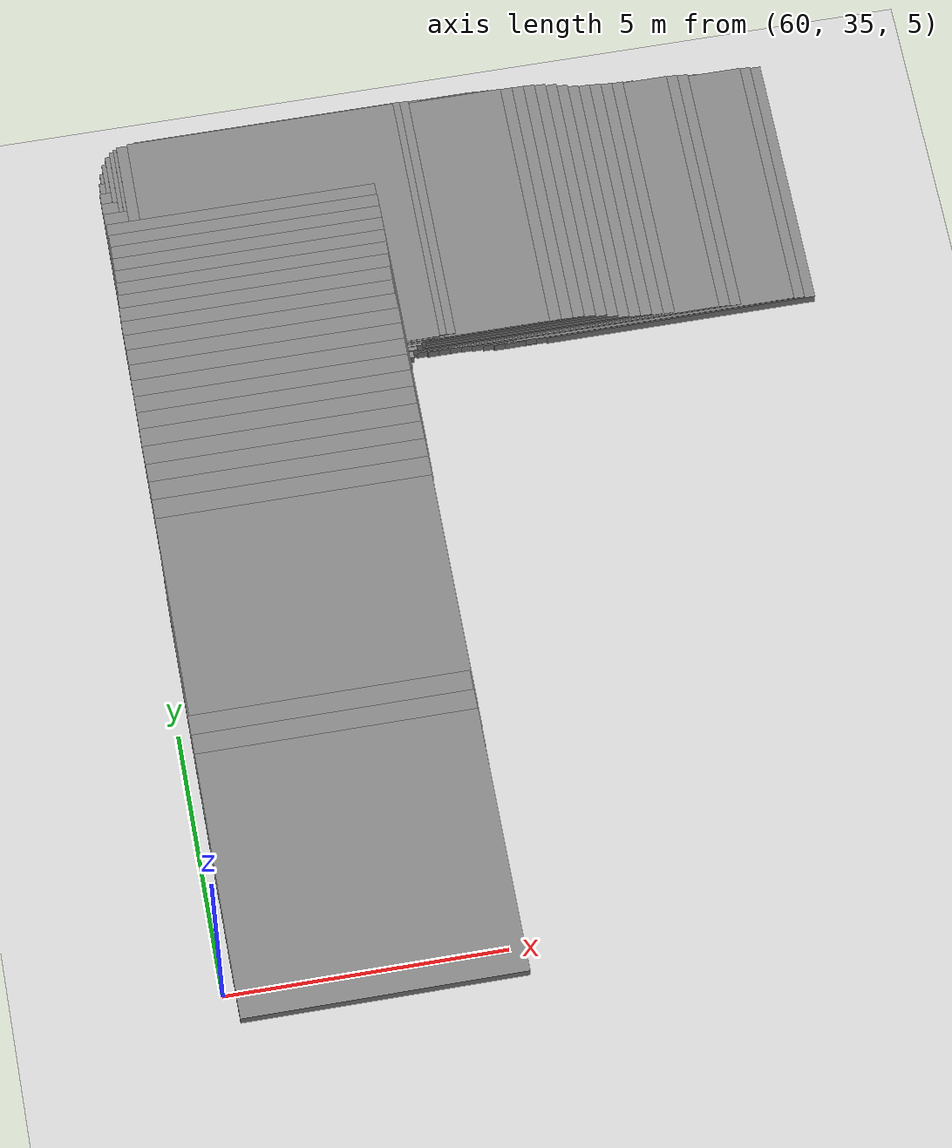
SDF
<sdf version="1.6">
 <world name="default">
  <include><uri>model://sun</uri></include>
  <include><uri>model://ground_plane</uri></include>
  <model name="road_segment_322">
   <static>true</static>
   <link name="link">
    <visual name="visual">
     <geometry><box><size>5.0 5.0 0.2</size></box></geometry>
     <material><ambient>0.5 0.5 0.5 1</ambient><diffuse>0.5 0.5 0.5 1</diffuse></material>
     <pose>70.35200588207542 49.13826918362388 5.053055603305653 0 0 0</pose>
    </visual>
    <collision name="collision">
     <geometry><box><size>5.0 5.0 0.2</size></box></geometry>
     <pose>70.35200588207542 49.13826918362388 5.053055603305653 0 0 0</pose>
    </collision>
   </link>
  </model>
  <model name="road_segment_323">
   <static>true</static>
   <link name="link">
    <visual name="visual">
     <geometry><box><size>5.0 5.0 0.2</size></box></geometry>
     <material><ambient>0.5 0.5 0.5 1</ambient><diffuse>0.5 0.5 0.5 1</diffuse></material>
     <pose>70.15773631724858 49.14766691182619 5.074309641225083 0 0 0</pose>
    </visual>
    <collision name="collision">
     <geometry><box><size>5.0 5.0 0.2</size></box></geometry>
     <pose>70.15773631724858 49.14766691182619 5.074309641225083 0 0 0</pose>
    </collision>
   </link>
  </model>
  <model name="road_segment_324">
   <static>true</static>
   <link name="link">
    <visual name="visual">
     <geometry><box><size>5.0 5.0 0.2</size></box></geometry>
     <material><ambient>0.5 0.5 0.5 1</ambient><diffuse>0.5 0.5 0.5 1</diffuse></material>
     <pose>69.96404117456795 49.15686034158695 5.082318409136752 0 0 0</pose>
    </visual>
    <collision name="collision">
     <geometry><box><size>5.0 5.0 0.2</size></box></geometry>
     <pose>69.96404117456795 49.15686034158695 5.082318409136752 0 0 0</pose>
    </collision>
   </link>
  </model>
  <model name="road_segment_325">
   <static>true</static>
   <link name="link">
    <visual name="visual">
     <geometry><box><size>5.0 5.0 0.2</size></box></geometry>
     <material><ambient>0.5 0.5 0.5 1</ambient><diffuse>0.5 0.5 0.5 1</diffuse></material>
     <pose>69.77023114746788 49.15767753534226 5.079267923095955 0 0 0</pose>
    </visual>
    <collision name="collision">
     <geometry><box><size>5.0 5.0 0.2</size></box></geometry>
     <pose>69.77023114746788 49.15767753534226 5.079267923095955 0 0 0</pose>
    </collision>
   </link>
  </model>
  <model name="road_segment_326">
   <static>true</static>
   <link name="link">
    <visual name="visual">
     <geometry><box><size>5.0 5.0 0.2</size></box></geometry>
     <material><ambient>0.5 0.5 0.5 1</ambient><diffuse>0.5 0.5 0.5 1</diffuse></material>
     <pose>69.57435320068714 49.15726893846279 5.056165707966141 0 0 0</pose>
    </visual>
    <collision name="collision">
     <geometry><box><size>5.0 5.0 0.2</size></box></geometry>
     <pose>69.57435320068714 49.15726893846279 5.056165707966141 0 0 0</pose>
    </collision>
   </link>
  </model>
  <model name="road_segment_327">
   <static>true</static>
   <link name="link">
    <visual name="visual">
     <geometry><box><size>5.0 5.0 0.2</size></box></geometry>
     <material><ambient>0.5 0.5 0.5 1</ambient><diffuse>0.5 0.5 0.5 1</diffuse></material>
     <pose>69.37801571619599 49.16482798071294 5.044987216774295 0 0 0</pose>
    </visual>
    <collision name="collision">
     <geometry><box><size>5.0 5.0 0.2</size></box></geometry>
     <pose>69.37801571619599 49.16482798071294 5.044987216774295 0 0 0</pose>
    </collision>
   </link>
  </model>
  <model name="road_segment_328">
   <static>true</static>
   <link name="link">
    <visual name="visual">
     <geometry><box><size>5.0 5.0 0.2</size></box></geometry>
     <material><ambient>0.5 0.5 0.5 1</ambient><diffuse>0.5 0.5 0.5 1</diffuse></material>
     <pose>69.17800193005397 49.178515976136936 5.066549284228788 0 0 0</pose>
    </visual>
    <collision name="collision">
     <geometry><box><size>5.0 5.0 0.2</size></box></geometry>
     <pose>69.17800193005397 49.178515976136936 5.066549284228788 0 0 0</pose>
    </collision>
   </link>
  </model>
  <model name="road_segment_329">
   <static>true</static>
   <link name="link">
    <visual name="visual">
     <geometry><box><size>5.0 5.0 0.2</size></box></geometry>
     <material><ambient>0.5 0.5 0.5 1</ambient><diffuse>0.5 0.5 0.5 1</diffuse></material>
     <pose>68.97477137998784 49.192612568440396 5.094937683637769 0 0 0</pose>
    </visual>
    <collision name="collision">
     <geometry><box><size>5.0 5.0 0.2</size></box></geometry>
     <pose>68.97477137998784 49.192612568440396 5.094937683637769 0 0 0</pose>
    </collision>
   </link>
  </model>
  <model name="road_segment_330">
   <static>true</static>
   <link name="link">
    <visual name="visual">
     <geometry><box><size>5.0 5.0 0.2</size></box></geometry>
     <material><ambient>0.5 0.5 0.5 1</ambient><diffuse>0.5 0.5 0.5 1</diffuse></material>
     <pose>68.77280455861728 49.200988804445856 5.109772783503925 0 0 0</pose>
    </visual>
    <collision name="collision">
     <geometry><box><size>5.0 5.0 0.2</size></box></geometry>
     <pose>68.77280455861728 49.200988804445856 5.109772783503925 0 0 0</pose>
    </collision>
   </link>
  </model>
  <model name="road_segment_331">
   <static>true</static>
   <link name="link">
    <visual name="visual">
     <geometry><box><size>5.0 5.0 0.2</size></box></geometry>
     <material><ambient>0.5 0.5 0.5 1</ambient><diffuse>0.5 0.5 0.5 1</diffuse></material>
     <pose>68.57049308395571 49.20895644357185 5.112813333108107 0 0 0</pose>
    </visual>
    <collision name="collision">
     <geometry><box><size>5.0 5.0 0.2</size></box></geometry>
     <pose>68.57049308395571 49.20895644357185 5.112813333108107 0 0 0</pose>
    </collision>
   </link>
  </model>
  <model name="road_segment_332">
   <static>true</static>
   <link name="link">
    <visual name="visual">
     <geometry><box><size>5.0 5.0 0.2</size></box></geometry>
     <material><ambient>0.5 0.5 0.5 1</ambient><diffuse>0.5 0.5 0.5 1</diffuse></material>
     <pose>68.36507972978949 49.213655307672994 5.095295395355908 0 0 0</pose>
    </visual>
    <collision name="collision">
     <geometry><box><size>5.0 5.0 0.2</size></box></geometry>
     <pose>68.36507972978949 49.213655307672994 5.095295395355908 0 0 0</pose>
    </collision>
   </link>
  </model>
  <model name="road_segment_333">
   <static>true</static>
   <link name="link">
    <visual name="visual">
     <geometry><box><size>5.0 5.0 0.2</size></box></geometry>
     <material><ambient>0.5 0.5 0.5 1</ambient><diffuse>0.5 0.5 0.5 1</diffuse></material>
     <pose>68.15713891824852 49.217945574894685 5.088240525359277 0 0 0</pose>
    </visual>
    <collision name="collision">
     <geometry><box><size>5.0 5.0 0.2</size></box></geometry>
     <pose>68.15713891824852 49.217945574894685 5.088240525359277 0 0 0</pose>
    </collision>
   </link>
  </model>
  <model name="road_segment_334">
   <static>true</static>
   <link name="link">
    <visual name="visual">
     <geometry><box><size>5.0 5.0 0.2</size></box></geometry>
     <material><ambient>0.5 0.5 0.5 1</ambient><diffuse>0.5 0.5 0.5 1</diffuse></material>
     <pose>67.95023206654787 49.22570891558276 5.10792460629354 0 0 0</pose>
    </visual>
    <collision name="collision">
     <geometry><box><size>5.0 5.0 0.2</size></box></geometry>
     <pose>67.95023206654787 49.22570891558276 5.10792460629354 0 0 0</pose>
    </collision>
   </link>
  </model>
  <model name="road_segment_335">
   <static>true</static>
   <link name="link">
    <visual name="visual">
     <geometry><box><size>5.0 5.0 0.2</size></box></geometry>
     <material><ambient>0.5 0.5 0.5 1</ambient><diffuse>0.5 0.5 0.5 1</diffuse></material>
     <pose>67.74389963697712 49.23265506251553 5.117741805669135 0 0 0</pose>
    </visual>
    <collision name="collision">
     <geometry><box><size>5.0 5.0 0.2</size></box></geometry>
     <pose>67.74389963697712 49.23265506251553 5.117741805669135 0 0 0</pose>
    </collision>
   </link>
  </model>
  <model name="road_segment_336">
   <static>true</static>
   <link name="link">
    <visual name="visual">
     <geometry><box><size>5.0 5.0 0.2</size></box></geometry>
     <material><ambient>0.5 0.5 0.5 1</ambient><diffuse>0.5 0.5 0.5 1</diffuse></material>
     <pose>67.53503975001526 49.239601209448296 5.123683794764889 0 0 0</pose>
    </visual>
    <collision name="collision">
     <geometry><box><size>5.0 5.0 0.2</size></box></geometry>
     <pose>67.53503975001526 49.239601209448296 5.123683794764889 0 0 0</pose>
    </collision>
   </link>
  </model>
  <model name="road_segment_337">
   <static>true</static>
   <link name="link">
    <visual name="visual">
     <geometry><box><size>5.0 5.0 0.2</size></box></geometry>
     <material><ambient>0.5 0.5 0.5 1</ambient><diffuse>0.5 0.5 0.5 1</diffuse></material>
     <pose>67.32342263682342 49.24348287979052 5.15398992644056 0 0 0</pose>
    </visual>
    <collision name="collision">
     <geometry><box><size>5.0 5.0 0.2</size></box></geometry>
     <pose>67.32342263682342 49.24348287979052 5.15398992644056 0 0 0</pose>
    </collision>
   </link>
  </model>
  <model name="road_segment_338">
   <static>true</static>
   <link name="link">
    <visual name="visual">
     <geometry><box><size>5.0 5.0 0.2</size></box></geometry>
     <material><ambient>0.5 0.5 0.5 1</ambient><diffuse>0.5 0.5 0.5 1</diffuse></material>
     <pose>67.11111621708227 49.24286998447314 5.177420043978668 0 0 0</pose>
    </visual>
    <collision name="collision">
     <geometry><box><size>5.0 5.0 0.2</size></box></geometry>
     <pose>67.11111621708227 49.24286998447314 5.177420043978668 0 0 0</pose>
    </collision>
   </link>
  </model>
  <model name="road_segment_339">
   <static>true</static>
   <link name="link">
    <visual name="visual">
     <geometry><box><size>5.0 5.0 0.2</size></box></geometry>
     <material><ambient>0.5 0.5 0.5 1</ambient><diffuse>0.5 0.5 0.5 1</diffuse></material>
     <pose>66.89926933505154 49.24654735638107 5.2117901782298635 0 0 0</pose>
    </visual>
    <collision name="collision">
     <geometry><box><size>5.0 5.0 0.2</size></box></geometry>
     <pose>66.89926933505154 49.24654735638107 5.2117901782298635 0 0 0</pose>
    </collision>
   </link>
  </model>
  <model name="road_segment_340">
   <static>true</static>
   <link name="link">
    <visual name="visual">
     <geometry><box><size>5.0 5.0 0.2</size></box></geometry>
     <material><ambient>0.5 0.5 0.5 1</ambient><diffuse>0.5 0.5 0.5 1</diffuse></material>
     <pose>66.68903083497469 49.25471929394497 5.286929511912296 0 0 0</pose>
    </visual>
    <collision name="collision">
     <geometry><box><size>5.0 5.0 0.2</size></box></geometry>
     <pose>66.68903083497469 49.25471929394497 5.286929511912296 0 0 0</pose>
    </collision>
   </link>
  </model>
  <model name="road_segment_341">
   <static>true</static>
   <link name="link">
    <visual name="visual">
     <geometry><box><size>5.0 5.0 0.2</size></box></geometry>
     <material><ambient>0.5 0.5 0.5 1</ambient><diffuse>0.5 0.5 0.5 1</diffuse></material>
     <pose>66.48017094801284 49.256557979897124 5.365208759565062 0 0 0</pose>
    </visual>
    <collision name="collision">
     <geometry><box><size>5.0 5.0 0.2</size></box></geometry>
     <pose>66.48017094801284 49.256557979897124 5.365208759565062 0 0 0</pose>
    </collision>
   </link>
  </model>
  <model name="road_segment_342">
   <static>true</static>
   <link name="link">
    <visual name="visual">
     <geometry><box><size>5.0 5.0 0.2</size></box></geometry>
     <material><ambient>0.5 0.5 0.5 1</ambient><diffuse>0.5 0.5 0.5 1</diffuse></material>
     <pose>66.27200036761664 49.25962245648405 5.419262974750521 0 0 0</pose>
    </visual>
    <collision name="collision">
     <geometry><box><size>5.0 5.0 0.2</size></box></geometry>
     <pose>66.27200036761664 49.25962245648405 5.419262974750521 0 0 0</pose>
    </collision>
   </link>
  </model>
  <model name="road_segment_343">
   <static>true</static>
   <link name="link">
    <visual name="visual">
     <geometry><box><size>5.0 5.0 0.2</size></box></geometry>
     <material><ambient>0.5 0.5 0.5 1</ambient><diffuse>0.5 0.5 0.5 1</diffuse></material>
     <pose>66.0626809429607 49.26513851434051 5.44632982808971 0 0 0</pose>
    </visual>
    <collision name="collision">
     <geometry><box><size>5.0 5.0 0.2</size></box></geometry>
     <pose>66.0626809429607 49.26513851434051 5.44632982808971 0 0 0</pose>
    </collision>
   </link>
  </model>
  <model name="road_segment_344">
   <static>true</static>
   <link name="link">
    <visual name="visual">
     <geometry><box><size>5.0 5.0 0.2</size></box></geometry>
     <material><ambient>0.5 0.5 0.5 1</ambient><diffuse>0.5 0.5 0.5 1</diffuse></material>
     <pose>65.85232755848074 49.26881588624844 5.449032538848982 0 0 0</pose>
    </visual>
    <collision name="collision">
     <geometry><box><size>5.0 5.0 0.2</size></box></geometry>
     <pose>65.85232755848074 49.26881588624844 5.449032538848982 0 0 0</pose>
    </collision>
   </link>
  </model>
  <model name="road_segment_345">
   <static>true</static>
   <link name="link">
    <visual name="visual">
     <geometry><box><size>5.0 5.0 0.2</size></box></geometry>
     <material><ambient>0.5 0.5 0.5 1</ambient><diffuse>0.5 0.5 0.5 1</diffuse></material>
     <pose>65.63910206333502 49.273106153470124 5.44994669101756 0 0 0</pose>
    </visual>
    <collision name="collision">
     <geometry><box><size>5.0 5.0 0.2</size></box></geometry>
     <pose>65.63910206333502 49.273106153470124 5.44994669101756 0 0 0</pose>
    </collision>
   </link>
  </model>
  <model name="road_segment_346">
   <static>true</static>
   <link name="link">
    <visual name="visual">
     <geometry><box><size>5.0 5.0 0.2</size></box></geometry>
     <material><ambient>0.5 0.5 0.5 1</ambient><diffuse>0.5 0.5 0.5 1</diffuse></material>
     <pose>65.42185561326377 49.280460897278736 5.452311562931925 0 0 0</pose>
    </visual>
    <collision name="collision">
     <geometry><box><size>5.0 5.0 0.2</size></box></geometry>
     <pose>65.42185561326377 49.280460897278736 5.452311562931925 0 0 0</pose>
    </collision>
   </link>
  </model>
  <model name="road_segment_347">
   <static>true</static>
   <link name="link">
    <visual name="visual">
     <geometry><box><size>5.0 5.0 0.2</size></box></geometry>
     <material><ambient>0.5 0.5 0.5 1</ambient><diffuse>0.5 0.5 0.5 1</diffuse></material>
     <pose>65.20575800745229 49.296804772410184 5.447134679455523 0 0 0</pose>
    </visual>
    <collision name="collision">
     <geometry><box><size>5.0 5.0 0.2</size></box></geometry>
     <pose>65.20575800745229 49.296804772410184 5.447134679455523 0 0 0</pose>
    </collision>
   </link>
  </model>
  <model name="road_segment_348">
   <static>true</static>
   <link name="link">
    <visual name="visual">
     <geometry><box><size>5.0 5.0 0.2</size></box></geometry>
     <material><ambient>0.5 0.5 0.5 1</ambient><diffuse>0.5 0.5 0.5 1</diffuse></material>
     <pose>64.99620881394111 49.31314864754164 5.438013030642977 0 0 0</pose>
    </visual>
    <collision name="collision">
     <geometry><box><size>5.0 5.0 0.2</size></box></geometry>
     <pose>64.99620881394111 49.31314864754164 5.438013030642977 0 0 0</pose>
    </collision>
   </link>
  </model>
  <model name="road_segment_349">
   <static>true</static>
   <link name="link">
    <visual name="visual">
     <geometry><box><size>5.0 5.0 0.2</size></box></geometry>
     <material><ambient>0.5 0.5 0.5 1</ambient><diffuse>0.5 0.5 0.5 1</diffuse></material>
     <pose>64.79918202288431 49.31743891476695 5.4358468874609125 0 0 0</pose>
    </visual>
    <collision name="collision">
     <geometry><box><size>5.0 5.0 0.2</size></box></geometry>
     <pose>64.79918202288431 49.31743891476695 5.4358468874609125 0 0 0</pose>
    </collision>
   </link>
  </model>
  <model name="road_segment_350">
   <static>true</static>
   <link name="link">
    <visual name="visual">
     <geometry><box><size>5.0 5.0 0.2</size></box></geometry>
     <material><ambient>0.5 0.5 0.5 1</ambient><diffuse>0.5 0.5 0.5 1</diffuse></material>
     <pose>64.61329902118317 49.31314864754526 5.424102019382014 0 0 0</pose>
    </visual>
    <collision name="collision">
     <geometry><box><size>5.0 5.0 0.2</size></box></geometry>
     <pose>64.61329902118317 49.31314864754526 5.424102019382014 0 0 0</pose>
    </collision>
   </link>
  </model>
  <model name="road_segment_351">
   <static>true</static>
   <link name="link">
    <visual name="visual">
     <geometry><box><size>5.0 5.0 0.2</size></box></geometry>
     <material><ambient>0.5 0.5 0.5 1</ambient><diffuse>0.5 0.5 0.5 1</diffuse></material>
     <pose>64.43097743669713 49.30783688812673 5.423724434790644 0 0 0</pose>
    </visual>
    <collision name="collision">
     <geometry><box><size>5.0 5.0 0.2</size></box></geometry>
     <pose>64.43097743669713 49.30783688812673 5.423724434790644 0 0 0</pose>
    </collision>
   </link>
  </model>
  <model name="road_segment_352">
   <static>true</static>
   <link name="link">
    <visual name="visual">
     <geometry><box><size>5.0 5.0 0.2</size></box></geometry>
     <material><ambient>0.5 0.5 0.5 1</ambient><diffuse>0.5 0.5 0.5 1</diffuse></material>
     <pose>64.24888562105 49.308245485006196 5.438281314431581 0 0 0</pose>
    </visual>
    <collision name="collision">
     <geometry><box><size>5.0 5.0 0.2</size></box></geometry>
     <pose>64.24888562105 49.308245485006196 5.438281314431581 0 0 0</pose>
    </collision>
   </link>
  </model>
  <model name="road_segment_353">
   <static>true</static>
   <link name="link">
    <visual name="visual">
     <geometry><box><size>5.0 5.0 0.2</size></box></geometry>
     <material><ambient>0.5 0.5 0.5 1</ambient><diffuse>0.5 0.5 0.5 1</diffuse></material>
     <pose>64.06495565459373 49.31417013974212 5.437466526629153 0 0 0</pose>
    </visual>
    <collision name="collision">
     <geometry><box><size>5.0 5.0 0.2</size></box></geometry>
     <pose>64.06495565459373 49.31417013974212 5.437466526629153 0 0 0</pose>
    </collision>
   </link>
  </model>
  <model name="road_segment_354">
   <static>true</static>
   <link name="link">
    <visual name="visual">
     <geometry><box><size>5.0 5.0 0.2</size></box></geometry>
     <material><ambient>0.5 0.5 0.5 1</ambient><diffuse>0.5 0.5 0.5 1</diffuse></material>
     <pose>63.87528146683862 49.31723461632903 5.451625948805491 0 0 0</pose>
    </visual>
    <collision name="collision">
     <geometry><box><size>5.0 5.0 0.2</size></box></geometry>
     <pose>63.87528146683862 49.31723461632903 5.451625948805491 0 0 0</pose>
    </collision>
   </link>
  </model>
  <model name="road_segment_355">
   <static>true</static>
   <link name="link">
    <visual name="visual">
     <geometry><box><size>5.0 5.0 0.2</size></box></geometry>
     <material><ambient>0.5 0.5 0.5 1</ambient><diffuse>0.5 0.5 0.5 1</diffuse></material>
     <pose>63.68733054547317 49.3164174225701 5.466808823953172 0 0 0</pose>
    </visual>
    <collision name="collision">
     <geometry><box><size>5.0 5.0 0.2</size></box></geometry>
     <pose>63.68733054547317 49.3164174225701 5.466808823953172 0 0 0</pose>
    </collision>
   </link>
  </model>
  <model name="road_segment_356">
   <static>true</static>
   <link name="link">
    <visual name="visual">
     <geometry><box><size>5.0 5.0 0.2</size></box></geometry>
     <material><ambient>0.5 0.5 0.5 1</ambient><diffuse>0.5 0.5 0.5 1</diffuse></material>
     <pose>63.521322549511794 49.3106970662721 5.489026696224253 0 0 0</pose>
    </visual>
    <collision name="collision">
     <geometry><box><size>5.0 5.0 0.2</size></box></geometry>
     <pose>63.521322549511794 49.3106970662721 5.489026696224253 0 0 0</pose>
    </collision>
   </link>
  </model>
  <model name="road_segment_357">
   <static>true</static>
   <link name="link">
    <visual name="visual">
     <geometry><box><size>5.0 5.0 0.2</size></box></geometry>
     <material><ambient>0.5 0.5 0.5 1</ambient><diffuse>0.5 0.5 0.5 1</diffuse></material>
     <pose>63.39276687652671 49.292923102064336 5.49611137553073 0 0 0</pose>
    </visual>
    <collision name="collision">
     <geometry><box><size>5.0 5.0 0.2</size></box></geometry>
     <pose>63.39276687652671 49.292923102064336 5.49611137553073 0 0 0</pose>
    </collision>
   </link>
  </model>
  <model name="road_segment_358">
   <static>true</static>
   <link name="link">
    <visual name="visual">
     <geometry><box><size>5.0 5.0 0.2</size></box></geometry>
     <material><ambient>0.5 0.5 0.5 1</ambient><diffuse>0.5 0.5 0.5 1</diffuse></material>
     <pose>63.303616561746445 49.27290185502858 5.472144690415413 0 0 0</pose>
    </visual>
    <collision name="collision">
     <geometry><box><size>5.0 5.0 0.2</size></box></geometry>
     <pose>63.303616561746445 49.27290185502858 5.472144690415413 0 0 0</pose>
    </collision>
   </link>
  </model>
  <model name="road_segment_359">
   <static>true</static>
   <link name="link">
    <visual name="visual">
     <geometry><box><size>5.0 5.0 0.2</size></box></geometry>
     <material><ambient>0.5 0.5 0.5 1</ambient><diffuse>0.5 0.5 0.5 1</diffuse></material>
     <pose>63.24410642893031 49.26513851434051 5.477083099413054 0 0 0</pose>
    </visual>
    <collision name="collision">
     <geometry><box><size>5.0 5.0 0.2</size></box></geometry>
     <pose>63.24410642893031 49.26513851434051 5.477083099413054 0 0 0</pose>
    </collision>
   </link>
  </model>
  <model name="road_segment_360">
   <static>true</static>
   <link name="link">
    <visual name="visual">
     <geometry><box><size>5.0 5.0 0.2</size></box></geometry>
     <material><ambient>0.5 0.5 0.5 1</ambient><diffuse>0.5 0.5 0.5 1</diffuse></material>
     <pose>63.18884701989493 49.26411702214366 5.4864829684508205 0 0 0</pose>
    </visual>
    <collision name="collision">
     <geometry><box><size>5.0 5.0 0.2</size></box></geometry>
     <pose>63.18884701989493 49.26411702214366 5.4864829684508205 0 0 0</pose>
    </collision>
   </link>
  </model>
  <model name="road_segment_361">
   <static>true</static>
   <link name="link">
    <visual name="visual">
     <geometry><box><size>5.0 5.0 0.2</size></box></geometry>
     <material><ambient>0.5 0.5 0.5 1</ambient><diffuse>0.5 0.5 0.5 1</diffuse></material>
     <pose>63.12520104775015 49.24062270164152 5.45985331832269 0 0 0</pose>
    </visual>
    <collision name="collision">
     <geometry><box><size>5.0 5.0 0.2</size></box></geometry>
     <pose>63.12520104775015 49.24062270164152 5.45985331832269 0 0 0</pose>
    </collision>
   </link>
  </model>
  <model name="road_segment_362">
   <static>true</static>
   <link name="link">
    <visual name="visual">
     <geometry><box><size>5.0 5.0 0.2</size></box></geometry>
     <material><ambient>0.5 0.5 0.5 1</ambient><diffuse>0.5 0.5 0.5 1</diffuse></material>
     <pose>63.0446670649345 49.1962899403447 5.445942307061726 0 0 0</pose>
    </visual>
    <collision name="collision">
     <geometry><box><size>5.0 5.0 0.2</size></box></geometry>
     <pose>63.0446670649345 49.1962899403447 5.445942307061726 0 0 0</pose>
    </collision>
   </link>
  </model>
  <model name="road_segment_363">
   <static>true</static>
   <link name="link">
    <visual name="visual">
     <geometry><box><size>5.0 5.0 0.2</size></box></geometry>
     <material><ambient>0.5 0.5 0.5 1</ambient><diffuse>0.5 0.5 0.5 1</diffuse></material>
     <pose>62.95333394605415 49.12458118819989 5.42501617155059 0 0 0</pose>
    </visual>
    <collision name="collision">
     <geometry><box><size>5.0 5.0 0.2</size></box></geometry>
     <pose>62.95333394605415 49.12458118819989 5.42501617155059 0 0 0</pose>
    </collision>
   </link>
  </model>
  <model name="road_segment_364">
   <static>true</static>
   <link name="link">
    <visual name="visual">
     <geometry><box><size>5.0 5.0 0.2</size></box></geometry>
     <material><ambient>0.5 0.5 0.5 1</ambient><diffuse>0.5 0.5 0.5 1</diffuse></material>
     <pose>62.87291484767427 48.99832475279702 5.382547841458192 0 0 0</pose>
    </visual>
    <collision name="collision">
     <geometry><box><size>5.0 5.0 0.2</size></box></geometry>
     <pose>62.87291484767427 48.99832475279702 5.382547841458192 0 0 0</pose>
    </collision>
   </link>
  </model>
  <model name="road_segment_365">
   <static>true</static>
   <link name="link">
    <visual name="visual">
     <geometry><box><size>5.0 5.0 0.2</size></box></geometry>
     <material><ambient>0.5 0.5 0.5 1</ambient><diffuse>0.5 0.5 0.5 1</diffuse></material>
     <pose>62.80949864436839 48.82364958731719 5.359992130342201 0 0 0</pose>
    </visual>
    <collision name="collision">
     <geometry><box><size>5.0 5.0 0.2</size></box></geometry>
     <pose>62.80949864436839 48.82364958731719 5.359992130342201 0 0 0</pose>
    </collision>
   </link>
  </model>
  <model name="road_segment_366">
   <static>true</static>
   <link name="link">
    <visual name="visual">
     <geometry><box><size>5.0 5.0 0.2</size></box></geometry>
     <material><ambient>0.5 0.5 0.5 1</ambient><diffuse>0.5 0.5 0.5 1</diffuse></material>
     <pose>62.767450944353016 48.615673776253445 5.364503272565399 0 0 0</pose>
    </visual>
    <collision name="collision">
     <geometry><box><size>5.0 5.0 0.2</size></box></geometry>
     <pose>62.767450944353016 48.615673776253445 5.364503272565399 0 0 0</pose>
    </collision>
   </link>
  </model>
  <model name="road_segment_367">
   <static>true</static>
   <link name="link">
    <visual name="visual">
     <geometry><box><size>5.0 5.0 0.2</size></box></geometry>
     <material><ambient>0.5 0.5 0.5 1</ambient><diffuse>0.5 0.5 0.5 1</diffuse></material>
     <pose>62.74769082303271 48.38931110566093 5.390347944200946 0 0 0</pose>
    </visual>
    <collision name="collision">
     <geometry><box><size>5.0 5.0 0.2</size></box></geometry>
     <pose>62.74769082303271 48.38931110566093 5.390347944200946 0 0 0</pose>
    </collision>
   </link>
  </model>
  <model name="road_segment_368">
   <static>true</static>
   <link name="link">
    <visual name="visual">
     <geometry><box><size>5.0 5.0 0.2</size></box></geometry>
     <material><ambient>0.5 0.5 0.5 1</ambient><diffuse>0.5 0.5 0.5 1</diffuse></material>
     <pose>62.74596755662673 48.14946473808597 5.4357872688412225 0 0 0</pose>
    </visual>
    <collision name="collision">
     <geometry><box><size>5.0 5.0 0.2</size></box></geometry>
     <pose>62.74596755662673 48.14946473808597 5.4357872688412225 0 0 0</pose>
    </collision>
   </link>
  </model>
  <model name="road_segment_369">
   <static>true</static>
   <link name="link">
    <visual name="visual">
     <geometry><box><size>5.0 5.0 0.2</size></box></geometry>
     <material><ambient>0.5 0.5 0.5 1</ambient><diffuse>0.5 0.5 0.5 1</diffuse></material>
     <pose>62.75366481318679 47.90308082046133 5.478364899736386 0 0 0</pose>
    </visual>
    <collision name="collision">
     <geometry><box><size>5.0 5.0 0.2</size></box></geometry>
     <pose>62.75366481318679 47.90308082046133 5.478364899736386 0 0 0</pose>
    </collision>
   </link>
  </model>
  <model name="road_segment_370">
   <static>true</static>
   <link name="link">
    <visual name="visual">
     <geometry><box><size>5.0 5.0 0.2</size></box></geometry>
     <material><ambient>0.5 0.5 0.5 1</ambient><diffuse>0.5 0.5 0.5 1</diffuse></material>
     <pose>62.7642341804126 47.65158944185607 5.524281173334181 0 0 0</pose>
    </visual>
    <collision name="collision">
     <geometry><box><size>5.0 5.0 0.2</size></box></geometry>
     <pose>62.7642341804126 47.65158944185607 5.524281173334181 0 0 0</pose>
    </collision>
   </link>
  </model>
  <model name="road_segment_371">
   <static>true</static>
   <link name="link">
    <visual name="visual">
     <geometry><box><size>5.0 5.0 0.2</size></box></geometry>
     <material><ambient>0.5 0.5 0.5 1</ambient><diffuse>0.5 0.5 0.5 1</diffuse></material>
     <pose>62.77181655255321 47.39805507885711 5.561721666499404 0 0 0</pose>
    </visual>
    <collision name="collision">
     <geometry><box><size>5.0 5.0 0.2</size></box></geometry>
     <pose>62.77181655255321 47.39805507885711 5.561721666499404 0 0 0</pose>
    </collision>
   </link>
  </model>
  <model name="road_segment_372">
   <static>true</static>
   <link name="link">
    <visual name="visual">
     <geometry><box><size>5.0 5.0 0.2</size></box></geometry>
     <material><ambient>0.5 0.5 0.5 1</ambient><diffuse>0.5 0.5 0.5 1</diffuse></material>
     <pose>62.77342493452342 47.14595080493447 5.570386239227661 0 0 0</pose>
    </visual>
    <collision name="collision">
     <geometry><box><size>5.0 5.0 0.2</size></box></geometry>
     <pose>62.77342493452342 47.14595080493447 5.570386239227661 0 0 0</pose>
    </collision>
   </link>
  </model>
  <model name="road_segment_373">
   <static>true</static>
   <link name="link">
    <visual name="visual">
     <geometry><box><size>5.0 5.0 0.2</size></box></geometry>
     <material><ambient>0.5 0.5 0.5 1</ambient><diffuse>0.5 0.5 0.5 1</diffuse></material>
     <pose>62.771586783698 46.89139494974229 5.577242380491992 0 0 0</pose>
    </visual>
    <collision name="collision">
     <geometry><box><size>5.0 5.0 0.2</size></box></geometry>
     <pose>62.771586783698 46.89139494974229 5.577242380491992 0 0 0</pose>
    </collision>
   </link>
  </model>
  <model name="road_segment_374">
   <static>true</static>
   <link name="link">
    <visual name="visual">
     <geometry><box><size>5.0 5.0 0.2</size></box></geometry>
     <material><ambient>0.5 0.5 0.5 1</ambient><diffuse>0.5 0.5 0.5 1</diffuse></material>
     <pose>62.76837001975757 46.631118738252106 5.581077845025372 0 0 0</pose>
    </visual>
    <collision name="collision">
     <geometry><box><size>5.0 5.0 0.2</size></box></geometry>
     <pose>62.76837001975757 46.631118738252106 5.581077845025372 0 0 0</pose>
    </collision>
   </link>
  </model>
  <model name="road_segment_375">
   <static>true</static>
   <link name="link">
    <visual name="visual">
     <geometry><box><size>5.0 5.0 0.2</size></box></geometry>
     <material><ambient>0.5 0.5 0.5 1</ambient><diffuse>0.5 0.5 0.5 1</diffuse></material>
     <pose>62.76170672303784 46.35981041104901 5.604368852450872 0 0 0</pose>
    </visual>
    <collision name="collision">
     <geometry><box><size>5.0 5.0 0.2</size></box></geometry>
     <pose>62.76170672303784 46.35981041104901 5.604368852450872 0 0 0</pose>
    </collision>
   </link>
  </model>
  <model name="road_segment_376">
   <static>true</static>
   <link name="link">
    <visual name="visual">
     <geometry><box><size>5.0 5.0 0.2</size></box></geometry>
     <material><ambient>0.5 0.5 0.5 1</ambient><diffuse>0.5 0.5 0.5 1</diffuse></material>
     <pose>62.74769082303272 46.07910435564361 5.642991781573276 0 0 0</pose>
    </visual>
    <collision name="collision">
     <geometry><box><size>5.0 5.0 0.2</size></box></geometry>
     <pose>62.74769082303272 46.07910435564361 5.642991781573276 0 0 0</pose>
    </collision>
   </link>
  </model>
  <model name="road_segment_377">
   <static>true</static>
   <link name="link">
    <visual name="visual">
     <geometry><box><size>5.0 5.0 0.2</size></box></geometry>
     <material><ambient>0.5 0.5 0.5 1</ambient><diffuse>0.5 0.5 0.5 1</diffuse></material>
     <pose>62.73218142547684 45.78675328920429 5.679379012457311 0 0 0</pose>
    </visual>
    <collision name="collision">
     <geometry><box><size>5.0 5.0 0.2</size></box></geometry>
     <pose>62.73218142547684 45.78675328920429 5.679379012457311 0 0 0</pose>
    </collision>
   </link>
  </model>
  <model name="road_segment_378">
   <static>true</static>
   <link name="link">
    <visual name="visual">
     <geometry><box><size>5.0 5.0 0.2</size></box></geometry>
     <material><ambient>0.5 0.5 0.5 1</ambient><diffuse>0.5 0.5 0.5 1</diffuse></material>
     <pose>62.72459905335255 45.48398300236944 5.720346940620848 0 0 0</pose>
    </visual>
    <collision name="collision">
     <geometry><box><size>5.0 5.0 0.2</size></box></geometry>
     <pose>62.72459905335255 45.48398300236944 5.720346940620848 0 0 0</pose>
    </collision>
   </link>
  </model>
  <model name="road_segment_379">
   <static>true</static>
   <link name="link">
    <visual name="visual">
     <geometry><box><size>5.0 5.0 0.2</size></box></geometry>
     <material><ambient>0.5 0.5 0.5 1</ambient><diffuse>0.5 0.5 0.5 1</diffuse></material>
     <pose>62.72632231975852 45.172427882649664 5.7619209914179 0 0 0</pose>
    </visual>
    <collision name="collision">
     <geometry><box><size>5.0 5.0 0.2</size></box></geometry>
     <pose>62.72632231975852 45.172427882649664 5.7619209914179 0 0 0</pose>
    </collision>
   </link>
  </model>
  <model name="road_segment_380">
   <static>true</static>
   <link name="link">
    <visual name="visual">
     <geometry><box><size>5.0 5.0 0.2</size></box></geometry>
     <material><ambient>0.5 0.5 0.5 1</ambient><diffuse>0.5 0.5 0.5 1</diffuse></material>
     <pose>62.72942419926317 44.85127073628966 5.788053819715281 0 0 0</pose>
    </visual>
    <collision name="collision">
     <geometry><box><size>5.0 5.0 0.2</size></box></geometry>
     <pose>62.72942419926317 44.85127073628966 5.788053819715281 0 0 0</pose>
    </collision>
   </link>
  </model>
  <model name="road_segment_381">
   <static>true</static>
   <link name="link">
    <visual name="visual">
     <geometry><box><size>5.0 5.0 0.2</size></box></geometry>
     <material><ambient>0.5 0.5 0.5 1</ambient><diffuse>0.5 0.5 0.5 1</diffuse></material>
     <pose>62.72666697303319 44.52418893519737 5.811702538858919 0 0 0</pose>
    </visual>
    <collision name="collision">
     <geometry><box><size>5.0 5.0 0.2</size></box></geometry>
     <pose>62.72666697303319 44.52418893519737 5.811702538858919 0 0 0</pose>
    </collision>
   </link>
  </model>
  <model name="road_segment_382">
   <static>true</static>
   <link name="link">
    <visual name="visual">
     <geometry><box><size>5.0 5.0 0.2</size></box></geometry>
     <material><ambient>0.5 0.5 0.5 1</ambient><diffuse>0.5 0.5 0.5 1</diffuse></material>
     <pose>62.7214971738479 44.193225463759234 5.824321813359936 0 0 0</pose>
    </visual>
    <collision name="collision">
     <geometry><box><size>5.0 5.0 0.2</size></box></geometry>
     <pose>62.7214971738479 44.193225463759234 5.824321813359936 0 0 0</pose>
    </collision>
   </link>
  </model>
  <model name="road_segment_383">
   <static>true</static>
   <link name="link">
    <visual name="visual">
     <geometry><box><size>5.0 5.0 0.2</size></box></geometry>
     <material><ambient>0.5 0.5 0.5 1</ambient><diffuse>0.5 0.5 0.5 1</diffuse></material>
     <pose>62.71919948531203 43.851638473480385 5.84206828915428 0 0 0</pose>
    </visual>
    <collision name="collision">
     <geometry><box><size>5.0 5.0 0.2</size></box></geometry>
     <pose>62.71919948531203 43.851638473480385 5.84206828915428 0 0 0</pose>
    </collision>
   </link>
  </model>
  <model name="road_segment_384">
   <static>true</static>
   <link name="link">
    <visual name="visual">
     <geometry><box><size>5.0 5.0 0.2</size></box></geometry>
     <material><ambient>0.5 0.5 0.5 1</ambient><diffuse>0.5 0.5 0.5 1</diffuse></material>
     <pose>62.716786912356724 43.49799787529541 5.88805411780838 0 0 0</pose>
    </visual>
    <collision name="collision">
     <geometry><box><size>5.0 5.0 0.2</size></box></geometry>
     <pose>62.716786912356724 43.49799787529541 5.88805411780838 0 0 0</pose>
    </collision>
   </link>
  </model>
  <model name="road_segment_385">
   <static>true</static>
   <link name="link">
    <visual name="visual">
     <geometry><box><size>5.0 5.0 0.2</size></box></geometry>
     <material><ambient>0.5 0.5 0.5 1</ambient><diffuse>0.5 0.5 0.5 1</diffuse></material>
     <pose>62.71138734433253 43.141088502085594 5.9256933397059015 0 0 0</pose>
    </visual>
    <collision name="collision">
     <geometry><box><size>5.0 5.0 0.2</size></box></geometry>
     <pose>62.71138734433253 43.141088502085594 5.9256933397059015 0 0 0</pose>
    </collision>
   </link>
  </model>
  <model name="road_segment_386">
   <static>true</static>
   <link name="link">
    <visual name="visual">
     <geometry><box><size>5.0 5.0 0.2</size></box></geometry>
     <material><ambient>0.5 0.5 0.5 1</ambient><diffuse>0.5 0.5 0.5 1</diffuse></material>
     <pose>62.71230641975341 42.77805017569831 5.937328906982036 0 0 0</pose>
    </visual>
    <collision name="collision">
     <geometry><box><size>5.0 5.0 0.2</size></box></geometry>
     <pose>62.71230641975341 42.77805017569831 5.937328906982036 0 0 0</pose>
    </collision>
   </link>
  </model>
  <model name="road_segment_387">
   <static>true</static>
   <link name="link">
    <visual name="visual">
     <geometry><box><size>5.0 5.0 0.2</size></box></geometry>
     <material><ambient>0.5 0.5 0.5 1</ambient><diffuse>0.5 0.5 0.5 1</diffuse></material>
     <pose>62.71736133450293 42.4062270164261 5.943827336528229 0 0 0</pose>
    </visual>
    <collision name="collision">
     <geometry><box><size>5.0 5.0 0.2</size></box></geometry>
     <pose>62.71736133450293 42.4062270164261 5.943827336528229 0 0 0</pose>
    </collision>
   </link>
  </model>
  <model name="road_segment_388">
   <static>true</static>
   <link name="link">
    <visual name="visual">
     <geometry><box><size>5.0 5.0 0.2</size></box></geometry>
     <material><ambient>0.5 0.5 0.5 1</ambient><diffuse>0.5 0.5 0.5 1</diffuse></material>
     <pose>62.71828040990748 42.02990929149429 5.980204630975649 0 0 0</pose>
    </visual>
    <collision name="collision">
     <geometry><box><size>5.0 5.0 0.2</size></box></geometry>
     <pose>62.71828040990748 42.02990929149429 5.980204630975649 0 0 0</pose>
    </collision>
   </link>
  </model>
  <model name="road_segment_389">
   <static>true</static>
   <link name="link">
    <visual name="visual">
     <geometry><box><size>5.0 5.0 0.2</size></box></geometry>
     <material><ambient>0.5 0.5 0.5 1</ambient><diffuse>0.5 0.5 0.5 1</diffuse></material>
     <pose>62.71644225908205 41.65154858216878 6.007251611441609 0 0 0</pose>
    </visual>
    <collision name="collision">
     <geometry><box><size>5.0 5.0 0.2</size></box></geometry>
     <pose>62.71644225908205 41.65154858216878 6.007251611441609 0 0 0</pose>
    </collision>
   </link>
  </model>
  <model name="road_segment_390">
   <static>true</static>
   <link name="link">
    <visual name="visual">
     <geometry><box><size>5.0 5.0 0.2</size></box></geometry>
     <material><ambient>0.5 0.5 0.5 1</ambient><diffuse>0.5 0.5 0.5 1</diffuse></material>
     <pose>62.7133403795774 41.271349186891115 6.008066399244036 0 0 0</pose>
    </visual>
    <collision name="collision">
     <geometry><box><size>5.0 5.0 0.2</size></box></geometry>
     <pose>62.7133403795774 41.271349186891115 6.008066399244036 0 0 0</pose>
    </collision>
   </link>
  </model>
  <model name="road_segment_391">
   <static>true</static>
   <link name="link">
    <visual name="visual">
     <geometry><box><size>5.0 5.0 0.2</size></box></geometry>
     <material><ambient>0.5 0.5 0.5 1</ambient><diffuse>0.5 0.5 0.5 1</diffuse></material>
     <pose>62.709664077942875 40.88910680722338 5.9958247093343875 0 0 0</pose>
    </visual>
    <collision name="collision">
     <geometry><box><size>5.0 5.0 0.2</size></box></geometry>
     <pose>62.709664077942875 40.88910680722338 5.9958247093343875 0 0 0</pose>
    </collision>
   </link>
  </model>
  <model name="road_segment_392">
   <static>true</static>
   <link name="link">
    <visual name="visual">
     <geometry><box><size>5.0 5.0 0.2</size></box></geometry>
     <material><ambient>0.5 0.5 0.5 1</ambient><diffuse>0.5 0.5 0.5 1</diffuse></material>
     <pose>62.70403474104714 40.50339135408926 5.983722129537349 0 0 0</pose>
    </visual>
    <collision name="collision">
     <geometry><box><size>5.0 5.0 0.2</size></box></geometry>
     <pose>62.70403474104714 40.50339135408926 5.983722129537349 0 0 0</pose>
    </collision>
   </link>
  </model>
  <model name="road_segment_393">
   <static>true</static>
   <link name="link">
    <visual name="visual">
     <geometry><box><size>5.0 5.0 0.2</size></box></geometry>
     <material><ambient>0.5 0.5 0.5 1</ambient><diffuse>0.5 0.5 0.5 1</diffuse></material>
     <pose>62.696337484487074 40.113589932174996 5.988630729225147 0 0 0</pose>
    </visual>
    <collision name="collision">
     <geometry><box><size>5.0 5.0 0.2</size></box></geometry>
     <pose>62.696337484487074 40.113589932174996 5.988630729225147 0 0 0</pose>
    </collision>
   </link>
  </model>
  <model name="road_segment_394">
   <static>true</static>
   <link name="link">
    <visual name="visual">
     <geometry><box><size>5.0 5.0 0.2</size></box></geometry>
     <material><ambient>0.5 0.5 0.5 1</ambient><diffuse>0.5 0.5 0.5 1</diffuse></material>
     <pose>62.69024860989724 39.720111138352806 5.981357257622985 0 0 0</pose>
    </visual>
    <collision name="collision">
     <geometry><box><size>5.0 5.0 0.2</size></box></geometry>
     <pose>62.69024860989724 39.720111138352806 5.981357257622985 0 0 0</pose>
    </collision>
   </link>
  </model>
  <model name="road_segment_395">
   <static>true</static>
   <link name="link">
    <visual name="visual">
     <geometry><box><size>5.0 5.0 0.2</size></box></geometry>
     <material><ambient>0.5 0.5 0.5 1</ambient><diffuse>0.5 0.5 0.5 1</diffuse></material>
     <pose>62.68714673039259 39.32295497262268 5.962617138167144 0 0 0</pose>
    </visual>
    <collision name="collision">
     <geometry><box><size>5.0 5.0 0.2</size></box></geometry>
     <pose>62.68714673039259 39.32295497262268 5.962617138167144 0 0 0</pose>
    </collision>
   </link>
  </model>
  <model name="road_segment_396">
   <static>true</static>
   <link name="link">
    <visual name="visual">
     <geometry><box><size>5.0 5.0 0.2</size></box></geometry>
     <material><ambient>0.5 0.5 0.5 1</ambient><diffuse>0.5 0.5 0.5 1</diffuse></material>
     <pose>62.689099765637465 38.9243687178235 5.965240357433498 0 0 0</pose>
    </visual>
    <collision name="collision">
     <geometry><box><size>5.0 5.0 0.2</size></box></geometry>
     <pose>62.689099765637465 38.9243687178235 5.965240357433498 0 0 0</pose>
    </collision>
   </link>
  </model>
  <model name="road_segment_397">
   <static>true</static>
   <link name="link">
    <visual name="visual">
     <geometry><box><size>5.0 5.0 0.2</size></box></geometry>
     <material><ambient>0.5 0.5 0.5 1</ambient><diffuse>0.5 0.5 0.5 1</diffuse></material>
     <pose>62.692890951691446 38.530072730246005 5.971867960655686 0 0 0</pose>
    </visual>
    <collision name="collision">
     <geometry><box><size>5.0 5.0 0.2</size></box></geometry>
     <pose>62.692890951691446 38.530072730246005 5.971867960655686 0 0 0</pose>
    </collision>
   </link>
  </model>
  <model name="road_segment_398">
   <static>true</static>
   <link name="link">
    <visual name="visual">
     <geometry><box><size>5.0 5.0 0.2</size></box></geometry>
     <material><ambient>0.5 0.5 0.5 1</ambient><diffuse>0.5 0.5 0.5 1</diffuse></material>
     <pose>62.692776067272 38.13700253329965 5.973736010739301 0 0 0</pose>
    </visual>
    <collision name="collision">
     <geometry><box><size>5.0 5.0 0.2</size></box></geometry>
     <pose>62.692776067272 38.13700253329965 5.973736010739301 0 0 0</pose>
    </collision>
   </link>
  </model>
  <model name="road_segment_399">
   <static>true</static>
   <link name="link">
    <visual name="visual">
     <geometry><box><size>5.0 5.0 0.2</size></box></geometry>
     <material><ambient>0.5 0.5 0.5 1</ambient><diffuse>0.5 0.5 0.5 1</diffuse></material>
     <pose>62.69128256973756 37.74454523167431 5.995924073700538 0 0 0</pose>
    </visual>
    <collision name="collision">
     <geometry><box><size>5.0 5.0 0.2</size></box></geometry>
     <pose>62.69128256973756 37.74454523167431 5.995924073700538 0 0 0</pose>
    </collision>
   </link>
  </model>
  <model name="road_segment_400">
   <static>true</static>
   <link name="link">
    <visual name="visual">
     <geometry><box><size>5.0 5.0 0.2</size></box></geometry>
     <material><ambient>0.5 0.5 0.5 1</ambient><diffuse>0.5 0.5 0.5 1</diffuse></material>
     <pose>62.69289095170777 37.35699109258803 6.022752452560968 0 0 0</pose>
    </visual>
    <collision name="collision">
     <geometry><box><size>5.0 5.0 0.2</size></box></geometry>
     <pose>62.69289095170777 37.35699109258803 6.022752452560968 0 0 0</pose>
    </collision>
   </link>
  </model>
  <model name="road_segment_401">
   <static>true</static>
   <link name="link">
    <visual name="visual">
     <geometry><box><size>5.0 5.0 0.2</size></box></geometry>
     <material><ambient>0.5 0.5 0.5 1</ambient><diffuse>0.5 0.5 0.5 1</diffuse></material>
     <pose>62.695877946792976 36.9747487129203 6.042883673142905 0 0 0</pose>
    </visual>
    <collision name="collision">
     <geometry><box><size>5.0 5.0 0.2</size></box></geometry>
     <pose>62.695877946792976 36.9747487129203 6.042883673142905 0 0 0</pose>
    </collision>
   </link>
  </model>
  <model name="road_segment_402">
   <static>true</static>
   <link name="link">
    <visual name="visual">
     <geometry><box><size>5.0 5.0 0.2</size></box></geometry>
     <material><ambient>0.5 0.5 0.5 1</ambient><diffuse>0.5 0.5 0.5 1</diffuse></material>
     <pose>62.696911906616975 36.59679660047425 6.059616632402521 0 0 0</pose>
    </visual>
    <collision name="collision">
     <geometry><box><size>5.0 5.0 0.2</size></box></geometry>
     <pose>62.696911906616975 36.59679660047425 6.059616632402521 0 0 0</pose>
    </collision>
   </link>
  </model>
 </world>
</sdf>
